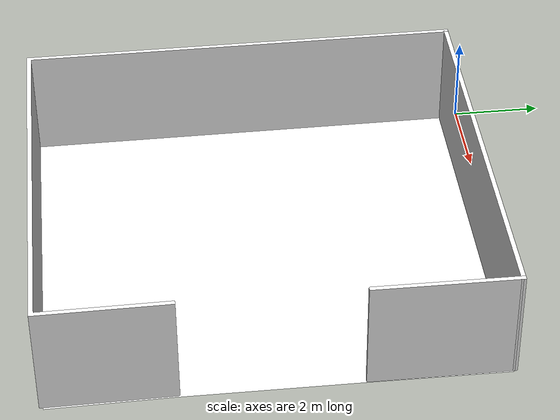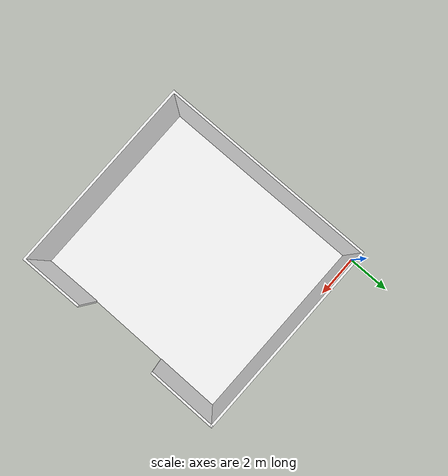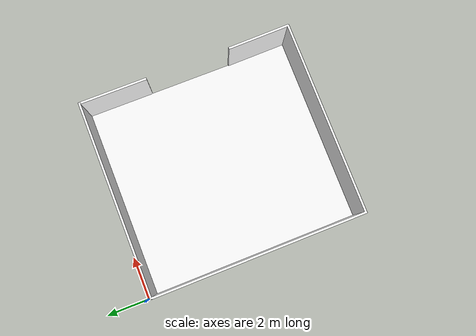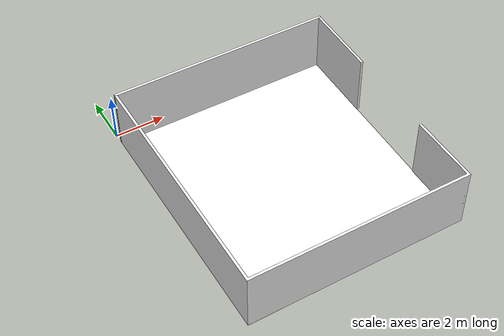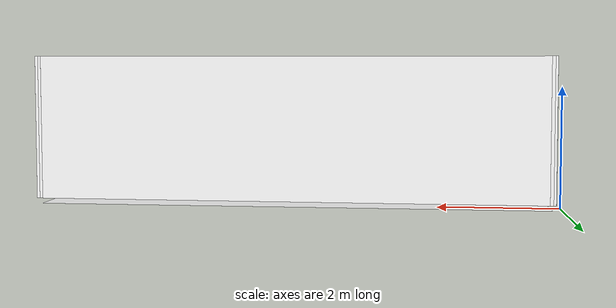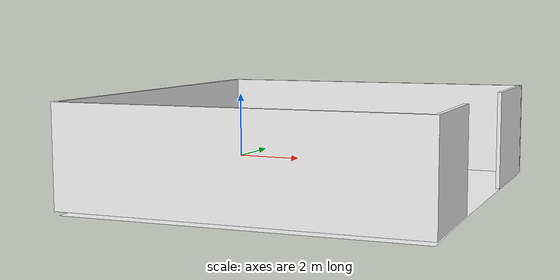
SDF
<?xml version='1.0' encoding='utf-8'?>
<sdf version="1.7">
  <model name="Floorplan_L1">
    <static>true</static>
    <link name="floor_1">
      <visual name="visual">
        <geometry>
          <mesh>
            <uri>model://Floorplan_L1/meshes/floor_1.obj</uri>
          </mesh>
        </geometry>
        <material>
          <diffuse>1.0 1.0 1.0</diffuse>
          <specular>0.1 0.1 0.1</specular>
          <pbr>
            <metal>
              <metalness>0.0</metalness>
              <albedo_map>model://Floorplan_L1/meshes/blue_linoleum.png</albedo_map>
            </metal>
          </pbr>
          <script>
            <uri>model://Floorplan_L1/meshes/</uri>
            <name>floor_1_Diffuse</name>
          </script>
        </material>
      </visual>
      <collision name="collision">
        <geometry>
          <mesh>
            <uri>model://Floorplan_L1/meshes/floor_1.obj</uri>
          </mesh>
        </geometry>
        <surface>
          <contact>
            <collide_bitmask>0x01</collide_bitmask>
          </contact>
        </surface>
      </collision>
    </link>
    <link name="wall_1">
      <visual name="wall_1">
        <geometry>
          <mesh>
            <uri>model://Floorplan_L1/meshes/wall_1.obj</uri>
          </mesh>
        </geometry>
        <transparency>0.0</transparency>
        <material>
          <diffuse>1.0 1.0 1.0</diffuse>
          <specular>0.1 0.1 0.1</specular>
          <pbr>
            <metal>
              <metalness>0.0</metalness>
              <albedo_map>model://Floorplan_L1/meshes/wall_white.png</albedo_map>
            </metal>
          </pbr>
          <script>
            <uri>model://Floorplan_L1/meshes/</uri>
            <name>wall_1_Diffuse</name>
          </script>
        </material>
      </visual>
      <collision name="collision">
        <geometry>
          <mesh>
            <uri>model://Floorplan_L1/meshes/wall_1.obj</uri>
          </mesh>
        </geometry>
        <surface>
          <contact>
            <collide_bitmask>0x01</collide_bitmask>
          </contact>
        </surface>
      </collision>
      <pose>0.014318309953443631 -0.4458826622784493 0 0 0 0</pose>
    </link>
    <link name="wall_2">
      <visual name="wall_2">
        <geometry>
          <mesh>
            <uri>model://Floorplan_L1/meshes/wall_2.obj</uri>
          </mesh>
        </geometry>
        <transparency>0.0</transparency>
        <material>
          <diffuse>1.0 1.0 1.0</diffuse>
          <specular>0.1 0.1 0.1</specular>
          <pbr>
            <metal>
              <metalness>0.0</metalness>
              <albedo_map>model://Floorplan_L1/meshes/default.png</albedo_map>
            </metal>
          </pbr>
          <script>
            <uri>model://Floorplan_L1/meshes/</uri>
            <name>wall_2_Diffuse</name>
          </script>
        </material>
      </visual>
      <collision name="collision">
        <geometry>
          <mesh>
            <uri>model://Floorplan_L1/meshes/wall_2.obj</uri>
          </mesh>
        </geometry>
        <surface>
          <contact>
            <collide_bitmask>0x01</collide_bitmask>
          </contact>
        </surface>
      </collision>
      <pose>0.013999121286355512 -10.17639619424061 0 0 0 0</pose>
    </link>
  </model>
</sdf>
